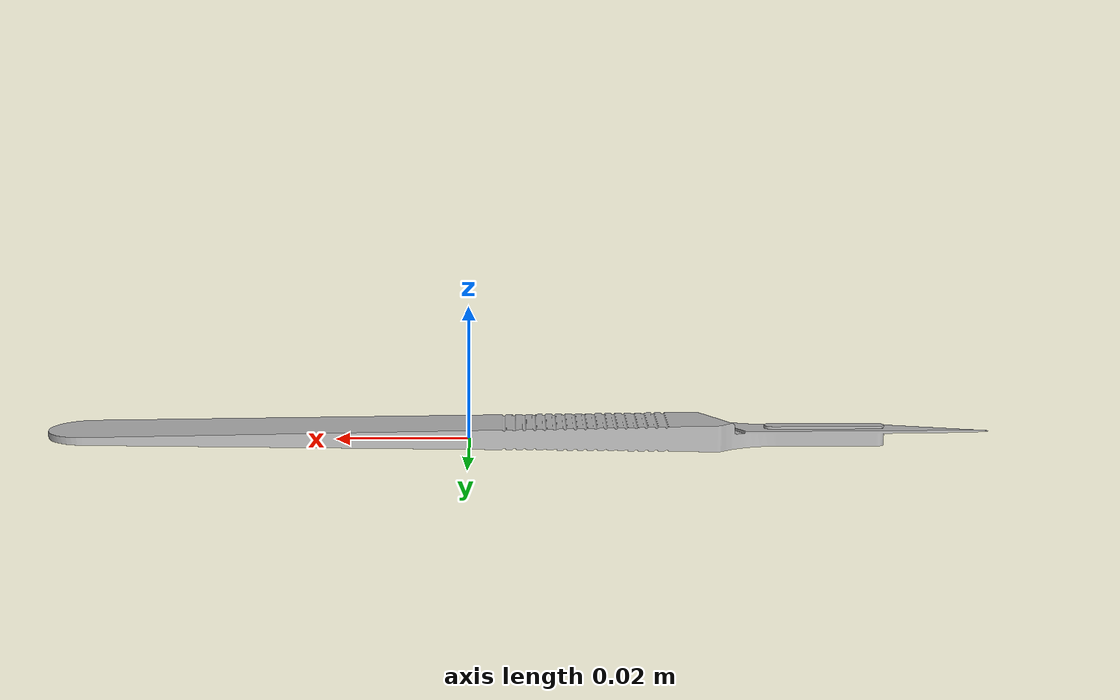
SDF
<?xml version='1.0' ?>
<sdf version="1.6">
    <model name="scalpel">
        <static>false</static>
        <link name="link">
            <collision name="collision">
                <pose>0 0 0.001 0 0 0</pose>
                <geometry>
                    <mesh>
                        <uri>meshes/o_scalpel_v2.obj</uri>
                    </mesh>
                </geometry>
            </collision>
            <visual name="visual">
                <pose>0 0 0.001 0 0 0</pose>
                <geometry>
                    <mesh>
                        <uri>meshes/o_scalpel_v2.obj</uri>
                    </mesh>
                </geometry>
            </visual>
        </link>
    </model>
</sdf>
